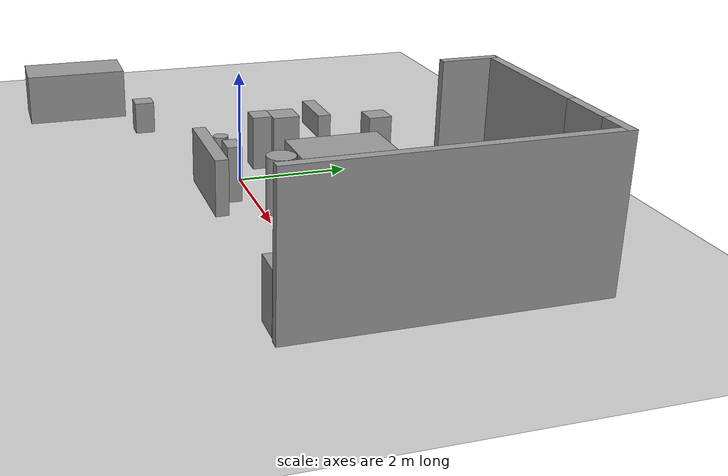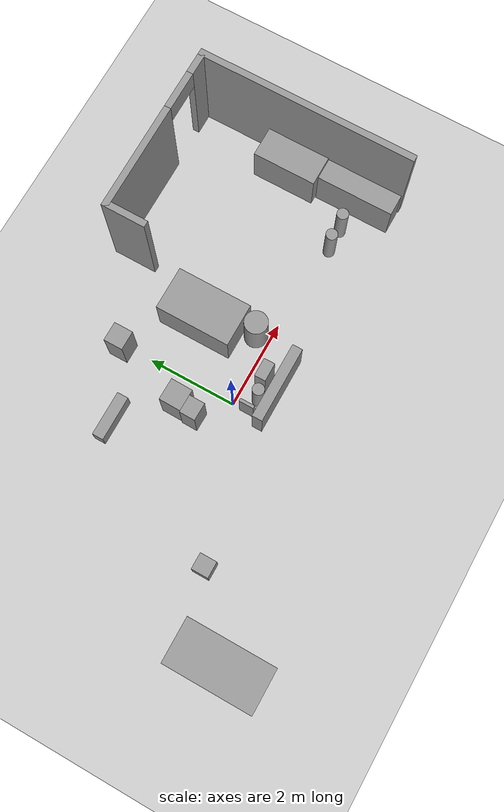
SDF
<sdf version="1.9">
 <world name="default">
  <model name="ground_plane">
   <static>true</static>
   <link name="link">
    <collision name="collision">
     <geometry><plane><normal>0 0 1</normal><size>100 100</size></plane></geometry>
     <surface><friction><ode><mu>100</mu><mu2>50</mu2></ode></friction></surface>
    </collision>
    <visual name="visual">
     <cast_shadows>false</cast_shadows>
     <geometry><plane><normal>0 0 1</normal><size>100 100</size></plane></geometry>
     <material>
      <script><uri>file://media/materials/scripts/gazebo.material</uri><name>Gazebo/Grey</name></script>
     </material>
    </visual>
   </link>
  </model>
  <model name="cma_L5">
   <pose>3.77502 1.45512 0 0 0 0</pose>
   <link name="Wall_0">
    <collision name="Wall_0_Collision">
     <geometry><box><size>1 0.14999999999999999 2.5</size></box></geometry>
     <pose>0 0 1.25 0 0 0</pose>
    </collision>
    <visual name="Wall_0_Visual">
     <pose>0 0 1.25 0 0 0</pose>
     <geometry><box><size>1 0.14999999999999999 2.5</size></box></geometry>
     <material>
      <script><uri>file://media/materials/scripts/gazebo.material</uri><name>Gazebo/Grey</name></script>
      <ambient>1 1 1 1</ambient>
     </material>
    </visual>
    <pose>-1.925 2 0 0 0 1.5708</pose>
   </link>
   <link name="Wall_1">
    <pose>0 2.4249999999999998 0 0 0 0</pose>
    <visual name="Wall_1_Visual_0">
     <pose>-0.75249999999999995 0 1.25 0 0 0</pose>
     <geometry><box><size>2.4950000000000001 0.14999999999999999 2.5</size></box></geometry>
     <material>
      <script><uri>file://media/materials/scripts/gazebo.material</uri><name>Gazebo/Grey</name></script>
      <ambient>1 1 1 1</ambient>
     </material>
    </visual>
    <collision name="Wall_1_Collision_0">
     <geometry><box><size>2.4950000000000001 0.14999999999999999 2.5</size></box></geometry>
     <pose>-0.75249999999999995 0 1.25 0 0 0</pose>
    </collision>
    <visual name="Wall_1_Visual_1">
     <pose>1.6975 0 1.25 0 0 0</pose>
     <geometry><box><size>0.60499999999999998 0.14999999999999999 2.5</size></box></geometry>
     <material>
      <script><uri>file://media/materials/scripts/gazebo.material</uri><name>Gazebo/Grey</name></script>
      <ambient>1 1 1 1</ambient>
     </material>
    </visual>
    <collision name="Wall_1_Collision_1">
     <geometry><box><size>0.60499999999999998 0.14999999999999999 2.5</size></box></geometry>
     <pose>1.6975 0 1.25 0 0 0</pose>
    </collision>
    <visual name="Wall_1_Visual_2">
     <pose>0.94499999999999995 0 2.25 0 0 0</pose>
     <geometry><box><size>0.90000000000000002 0.14999999999999999 0.5</size></box></geometry>
     <material>
      <script><uri>file://media/materials/scripts/gazebo.material</uri><name>Gazebo/Grey</name></script>
      <ambient>1 1 1 1</ambient>
     </material>
    </visual>
    <collision name="Wall_1_Collision_2">
     <geometry><box><size>0.90000000000000002 0.14999999999999999 0.5</size></box></geometry>
     <pose>0.94499999999999995 0 2.25 0 0 0</pose>
    </collision>
   </link>
   <link name="Wall_3">
    <collision name="Wall_3_Collision">
     <geometry><box><size>5 0.14999999999999999 2.5</size></box></geometry>
     <pose>0 0 1.25 0 0 0</pose>
    </collision>
    <visual name="Wall_3_Visual">
     <pose>0 0 1.25 0 0 0</pose>
     <geometry><box><size>5 0.14999999999999999 2.5</size></box></geometry>
     <material>
      <script><uri>file://media/materials/scripts/gazebo.material</uri><name>Gazebo/Grey</name></script>
      <ambient>1 1 1 1</ambient>
     </material>
    </visual>
    <pose>1.925 0 0 0 0 -1.5708</pose>
   </link>
   <static>true</static>
  </model>
  <model name="cma_armario">
   <link name="link_0">
    <pose>1.3215699999999999 0.88517800000000002 0.5 0 0 0</pose>
    <inertial>
     <mass>0.40237600000000001</mass>
     <inertia>
      <ixx>0.0353686</ixx>
      <ixy>0</ixy>
      <ixz>0</ixz>
      <iyy>0.13261600000000001</iyy>
      <iyz>0</iyz>
      <izz>0.100922</izz>
     </inertia>
    </inertial>
    <visual name="visual">
     <geometry><box><size>1.7187699999999999 0.234069 1</size></box></geometry>
     <material>
      <lighting>true</lighting>
      <script><uri>file://media/materials/scripts/gazebo.material</uri><name>Gazebo/Grey</name></script>
      <ambient>0.300000012 0.300000012 0.300000012 1</ambient>
      <diffuse>0.699999988 0.699999988 0.699999988 1</diffuse>
      <specular>0.00999999978 0.00999999978 0.00999999978 1</specular>
      <emissive>0 0 0 1</emissive>
     </material>
    </visual>
    <collision name="collision">
     <geometry><box><size>1.7187699999999999 0.234069 1</size></box></geometry>
     <surface>
      <friction>
       <ode><mu>1</mu><mu2>1</mu2><fdir1>0 0 0</fdir1><slip1>0</slip1><slip2>0</slip2></ode>
       <torsional>
        <coefficient>1</coefficient>
        <patch_radius>0</patch_radius>
        <surface_radius>0</surface_radius>
        <use_patch_radius>true</use_patch_radius>
        <ode><slip>0</slip></ode>
       </torsional>
      </friction>
      <bounce><restitution_coefficient>0</restitution_coefficient><threshold>1000000</threshold></bounce>
      <contact>
       <collide_without_contact>false</collide_without_contact>
       <collide_without_contact_bitmask>1</collide_without_contact_bitmask>
       <collide_bitmask>1</collide_bitmask>
       <ode>
        <soft_cfm>0</soft_cfm>
        <soft_erp>0.20000000000000001</soft_erp>
        <kp>10000000000000</kp>
        <kd>1</kd>
        <max_vel>0.01</max_vel>
        <min_depth>0</min_depth>
       </ode>
       <bullet>
        <split_impulse>true</split_impulse>
        <split_impulse_penetration_threshold>-0.01</split_impulse_penetration_threshold>
        <soft_cfm>0</soft_cfm>
        <soft_erp>0.20000000000000001</soft_erp>
        <kp>10000000000000</kp>
        <kd>1</kd>
       </bullet>
      </contact>
     </surface>
    </collision>
   </link>
   <static>false</static>
   <pose>-0.66933500000000001 -1.5827199999999999 0 0 0 0.0012960000000000001</pose>
  </model>
  <model name="cma_picador_0">
   <link name="link_2">
    <pose>-0.7258 -1.6910400000000001 0 0 0 0</pose>
    <inertial>
     <mass>0.10473200000000001</mass>
     <inertia>
      <ixx>0.0092790600000000004</ixx>
      <ixy>0</ixy>
      <ixz>0</ixz>
      <iyy>0.010243</iyy>
      <iyz>0</iyz>
      <izz>0.0020667200000000002</izz>
     </inertia>
    </inertial>
    <visual name="visual">
     <geometry><box><size>0.416688 0.25134000000000001 1</size></box></geometry>
     <material>
      <lighting>true</lighting>
      <script><uri>file://media/materials/scripts/gazebo.material</uri><name>Gazebo/Grey</name></script>
      <ambient>0.300000012 0.300000012 0.300000012 1</ambient>
      <diffuse>0.699999988 0.699999988 0.699999988 1</diffuse>
      <specular>0.00999999978 0.00999999978 0.00999999978 1</specular>
      <emissive>0 0 0 1</emissive>
     </material>
    </visual>
    <collision name="collision">
     <geometry><box><size>0.416688 0.25134000000000001 1</size></box></geometry>
     <surface>
      <friction>
       <ode><mu>1</mu><mu2>1</mu2><fdir1>0 0 0</fdir1><slip1>0</slip1><slip2>0</slip2></ode>
       <torsional>
        <coefficient>1</coefficient>
        <patch_radius>0</patch_radius>
        <surface_radius>0</surface_radius>
        <use_patch_radius>true</use_patch_radius>
        <ode><slip>0</slip></ode>
       </torsional>
      </friction>
      <bounce><restitution_coefficient>0</restitution_coefficient><threshold>1000000</threshold></bounce>
      <contact>
       <collide_without_contact>false</collide_without_contact>
       <collide_without_contact_bitmask>1</collide_without_contact_bitmask>
       <collide_bitmask>1</collide_bitmask>
       <ode>
        <soft_cfm>0</soft_cfm>
        <soft_erp>0.20000000000000001</soft_erp>
        <kp>10000000000000</kp>
        <kd>1</kd>
        <max_vel>0.01</max_vel>
        <min_depth>0</min_depth>
       </ode>
       <bullet>
        <split_impulse>true</split_impulse>
        <split_impulse_penetration_threshold>-0.01</split_impulse_penetration_threshold>
        <soft_cfm>0</soft_cfm>
        <soft_erp>0.20000000000000001</soft_erp>
        <kp>10000000000000</kp>
        <kd>1</kd>
       </bullet>
      </contact>
     </surface>
    </collision>
   </link>
   <static>false</static>
   <pose>1.47237 1.3597600000000001 0.50000199999999995 9.9999999999999995e-07 2.0000000000000003e-06 0.0087860000000000004</pose>
  </model>
  <model name="cma_lixo">
   <link name="link_1">
    <pose>0.88296200000000002 1.81586 0.5 0 0 0</pose>
    <inertial>
     <mass>0.068764400000000003</mass>
     <inertia>
      <ixx>0.00602588</ixx>
      <ixy>0</ixy>
      <ixz>0</ixz>
      <iyy>0.00602588</iyy>
      <iyz>0</iyz>
      <izz>0.00059106800000000004</izz>
     </inertia>
    </inertial>
    <visual name="visual">
     <geometry><cylinder><radius>0.13111200000000001</radius><length>1</length></cylinder></geometry>
     <material>
      <lighting>true</lighting>
      <script><uri>file://media/materials/scripts/gazebo.material</uri><name>Gazebo/Grey</name></script>
      <ambient>0.300000012 0.300000012 0.300000012 1</ambient>
      <diffuse>0.699999988 0.699999988 0.699999988 1</diffuse>
      <specular>0.00999999978 0.00999999978 0.00999999978 1</specular>
      <emissive>0 0 0 1</emissive>
     </material>
    </visual>
    <collision name="collision">
     <geometry><cylinder><radius>0.13111200000000001</radius><length>1</length></cylinder></geometry>
     <surface>
      <friction>
       <ode><mu>1</mu><mu2>1</mu2><fdir1>0 0 0</fdir1><slip1>0</slip1><slip2>0</slip2></ode>
       <torsional>
        <coefficient>1</coefficient>
        <patch_radius>0</patch_radius>
        <surface_radius>0</surface_radius>
        <use_patch_radius>true</use_patch_radius>
        <ode><slip>0</slip></ode>
       </torsional>
      </friction>
      <bounce><restitution_coefficient>0</restitution_coefficient><threshold>1000000</threshold></bounce>
      <contact>
       <collide_without_contact>false</collide_without_contact>
       <collide_without_contact_bitmask>1</collide_without_contact_bitmask>
       <collide_bitmask>1</collide_bitmask>
       <ode>
        <soft_cfm>0</soft_cfm>
        <soft_erp>0.20000000000000001</soft_erp>
        <kp>10000000000000</kp>
        <kd>1</kd>
        <max_vel>0.01</max_vel>
        <min_depth>0</min_depth>
       </ode>
       <bullet>
        <split_impulse>true</split_impulse>
        <split_impulse_penetration_threshold>-0.01</split_impulse_penetration_threshold>
        <soft_cfm>0</soft_cfm>
        <soft_erp>0.20000000000000001</soft_erp>
        <kp>10000000000000</kp>
        <kd>1</kd>
       </bullet>
      </contact>
     </surface>
    </collision>
   </link>
   <static>false</static>
   <pose>-1.35785 -1.5254399999999999 -5.0000000000000004e-06 0 0 -0.54309700000000016</pose>
  </model>
  <model name="cma_cesto">
   <link name="link_1">
    <pose>-0.32965899999999998 -1.55494 0 0 0 0</pose>
    <inertial>
     <mass>0.267897</mass>
     <inertia>
      <ixx>0.026810199999999999</ixx>
      <ixy>0</ixy>
      <ixz>0</ixz>
      <iyy>0.026810199999999999</iyy>
      <iyz>0</iyz>
      <izz>0.0089711099999999992</izz>
     </inertia>
    </inertial>
    <visual name="visual">
     <geometry><cylinder><radius>0.25879200000000002</radius><length>1</length></cylinder></geometry>
     <material>
      <lighting>true</lighting>
      <script><uri>file://media/materials/scripts/gazebo.material</uri><name>Gazebo/Grey</name></script>
      <ambient>0.300000012 0.300000012 0.300000012 1</ambient>
      <diffuse>0.699999988 0.699999988 0.699999988 1</diffuse>
      <specular>0.00999999978 0.00999999978 0.00999999978 1</specular>
      <emissive>0 0 0 1</emissive>
     </material>
    </visual>
    <collision name="collision">
     <geometry><cylinder><radius>0.25879200000000002</radius><length>1</length></cylinder></geometry>
     <surface>
      <friction>
       <ode><mu>1</mu><mu2>1</mu2><fdir1>0 0 0</fdir1><slip1>0</slip1><slip2>0</slip2></ode>
       <torsional>
        <coefficient>1</coefficient>
        <patch_radius>0</patch_radius>
        <surface_radius>0</surface_radius>
        <use_patch_radius>true</use_patch_radius>
        <ode><slip>0</slip></ode>
       </torsional>
      </friction>
      <bounce><restitution_coefficient>0</restitution_coefficient><threshold>1000000</threshold></bounce>
      <contact>
       <collide_without_contact>false</collide_without_contact>
       <collide_without_contact_bitmask>1</collide_without_contact_bitmask>
       <collide_bitmask>1</collide_bitmask>
       <ode>
        <soft_cfm>0</soft_cfm>
        <soft_erp>0.20000000000000001</soft_erp>
        <kp>10000000000000</kp>
        <kd>1</kd>
        <max_vel>0.01</max_vel>
        <min_depth>0</min_depth>
       </ode>
       <bullet>
        <split_impulse>true</split_impulse>
        <split_impulse_penetration_threshold>-0.01</split_impulse_penetration_threshold>
        <soft_cfm>0</soft_cfm>
        <soft_erp>0.20000000000000001</soft_erp>
        <kp>10000000000000</kp>
        <kd>1</kd>
       </bullet>
      </contact>
     </surface>
    </collision>
   </link>
   <static>false</static>
   <pose>1.9109799999999999 1.85863 0.49999199999999999 0 0 -0.013204999999999998</pose>
  </model>
  <model name="cma_sofa_2_lugares">
   <link name="link_0">
    <pose>-0.034013000000000002 -0.039828000000000002 0 0 0 0</pose>
    <inertial>
     <mass>1.6607099999999999</mass>
     <inertia>
      <ixx>0.53818299999999997</ixx>
      <ixy>0</ixy>
      <ixz>0</ixz>
      <iyy>0.27051900000000001</iyy>
      <iyz>0</iyz>
      <izz>0.53191500000000003</izz>
     </inertia>
    </inertial>
    <visual name="visual">
     <geometry><box><size>0.97714699999999999 1.6996800000000001 1</size></box></geometry>
     <material>
      <lighting>true</lighting>
      <script><uri>file://media/materials/scripts/gazebo.material</uri><name>Gazebo/Grey</name></script>
      <ambient>0.300000012 0.300000012 0.300000012 1</ambient>
      <diffuse>0.699999988 0.699999988 0.699999988 1</diffuse>
      <specular>0.00999999978 0.00999999978 0.00999999978 1</specular>
      <emissive>0 0 0 1</emissive>
     </material>
    </visual>
    <collision name="collision">
     <geometry><box><size>0.97714699999999999 1.6996800000000001 1</size></box></geometry>
     <surface>
      <friction>
       <ode><mu>1</mu><mu2>1</mu2><fdir1>0 0 0</fdir1><slip1>0</slip1><slip2>0</slip2></ode>
       <torsional>
        <coefficient>1</coefficient>
        <patch_radius>0</patch_radius>
        <surface_radius>0</surface_radius>
        <use_patch_radius>true</use_patch_radius>
        <ode><slip>0</slip></ode>
       </torsional>
      </friction>
      <bounce><restitution_coefficient>0</restitution_coefficient><threshold>1000000</threshold></bounce>
      <contact>
       <collide_without_contact>false</collide_without_contact>
       <collide_without_contact_bitmask>1</collide_without_contact_bitmask>
       <collide_bitmask>1</collide_bitmask>
       <ode>
        <soft_cfm>0</soft_cfm>
        <soft_erp>0.20000000000000001</soft_erp>
        <kp>10000000000000</kp>
        <kd>1</kd>
        <max_vel>0.01</max_vel>
        <min_depth>0</min_depth>
       </ode>
       <bullet>
        <split_impulse>true</split_impulse>
        <split_impulse_penetration_threshold>-0.01</split_impulse_penetration_threshold>
        <soft_cfm>0</soft_cfm>
        <soft_erp>0.20000000000000001</soft_erp>
        <kp>10000000000000</kp>
        <kd>1</kd>
       </bullet>
      </contact>
     </surface>
    </collision>
   </link>
   <static>false</static>
   <pose>1.3647899999999999 1.4730399999999999 0.49999900000000003 -2.5849394142333812e-26 -2.0000000000000003e-06 0.00019799999999999996</pose>
  </model>
  <model name="cma_gaveteiro_pequeno_0">
   <link name="link_0">
    <pose>0.25617400000000001 1.2505500000000001 0.5 0 0 0</pose>
    <inertial>
     <mass>0.18718599999999999</mass>
     <inertia>
      <ixx>0.018509999999999999</ixx>
      <ixy>0</ixy>
      <ixz>0</ixz>
      <iyy>0.018527600000000002</iyy>
      <iyz>0</iyz>
      <izz>0.00583981</izz>
     </inertia>
    </inertial>
    <visual name="visual">
     <geometry><box><size>0.43331700000000001 0.432002 1</size></box></geometry>
     <material>
      <lighting>true</lighting>
      <script><uri>file://media/materials/scripts/gazebo.material</uri><name>Gazebo/Grey</name></script>
      <ambient>0.300000012 0.300000012 0.300000012 1</ambient>
      <diffuse>0.699999988 0.699999988 0.699999988 1</diffuse>
      <specular>0.00999999978 0.00999999978 0.00999999978 1</specular>
      <emissive>0 0 0 1</emissive>
     </material>
    </visual>
    <collision name="collision">
     <geometry><box><size>0.43331700000000001 0.432002 1</size></box></geometry>
     <surface>
      <friction>
       <ode><mu>1</mu><mu2>1</mu2><fdir1>0 0 0</fdir1><slip1>0</slip1><slip2>0</slip2></ode>
       <torsional>
        <coefficient>1</coefficient>
        <patch_radius>0</patch_radius>
        <surface_radius>0</surface_radius>
        <use_patch_radius>true</use_patch_radius>
        <ode><slip>0</slip></ode>
       </torsional>
      </friction>
      <bounce><restitution_coefficient>0</restitution_coefficient><threshold>1000000</threshold></bounce>
      <contact>
       <collide_without_contact>false</collide_without_contact>
       <collide_without_contact_bitmask>1</collide_without_contact_bitmask>
       <collide_bitmask>1</collide_bitmask>
       <ode>
        <soft_cfm>0</soft_cfm>
        <soft_erp>0.20000000000000001</soft_erp>
        <kp>10000000000000</kp>
        <kd>1</kd>
        <max_vel>0.01</max_vel>
        <min_depth>0</min_depth>
       </ode>
       <bullet>
        <split_impulse>true</split_impulse>
        <split_impulse_penetration_threshold>-0.01</split_impulse_penetration_threshold>
        <soft_cfm>0</soft_cfm>
        <soft_erp>0.20000000000000001</soft_erp>
        <kp>10000000000000</kp>
        <kd>1</kd>
       </bullet>
      </contact>
     </surface>
    </collision>
   </link>
   <static>false</static>
   <pose>-0.33604600000000001 1.3951199999999999 0 0 0 -5.9000000000000004e-05</pose>
  </model>
  <model name="cma_gaveteiro_0">
   <link name="link_0">
    <pose>0 3.9999999999999998e-06 0 0 0 0</pose>
    <inertial>
     <mass>0.245086</mass>
     <inertia>
      <ixx>0.025418</ixx>
      <ixy>0</ixy>
      <ixz>0</ixz>
      <iyy>0.025441100000000001</iyy>
      <iyz>0</iyz>
      <izz>0.010011300000000001</izz>
     </inertia>
    </inertial>
    <visual name="visual">
     <geometry><box><size>0.49565700000000001 0.49449100000000001 1</size></box></geometry>
     <material>
      <lighting>true</lighting>
      <script><uri>file://media/materials/scripts/gazebo.material</uri><name>Gazebo/Grey</name></script>
      <ambient>0.300000012 0.300000012 0.300000012 1</ambient>
      <diffuse>0.699999988 0.699999988 0.699999988 1</diffuse>
      <specular>0.00999999978 0.00999999978 0.00999999978 1</specular>
      <emissive>0 0 0 1</emissive>
     </material>
    </visual>
    <collision name="collision">
     <geometry><box><size>0.49565700000000001 0.49449100000000001 1</size></box></geometry>
     <surface>
      <friction>
       <ode><mu>1</mu><mu2>1</mu2><fdir1>0 0 0</fdir1><slip1>0</slip1><slip2>0</slip2></ode>
       <torsional>
        <coefficient>1</coefficient>
        <patch_radius>0</patch_radius>
        <surface_radius>0</surface_radius>
        <use_patch_radius>true</use_patch_radius>
        <ode><slip>0</slip></ode>
       </torsional>
      </friction>
      <bounce><restitution_coefficient>0</restitution_coefficient><threshold>1000000</threshold></bounce>
      <contact>
       <collide_without_contact>false</collide_without_contact>
       <collide_without_contact_bitmask>1</collide_without_contact_bitmask>
       <collide_bitmask>1</collide_bitmask>
       <ode>
        <soft_cfm>0</soft_cfm>
        <soft_erp>0.20000000000000001</soft_erp>
        <kp>10000000000000</kp>
        <kd>1</kd>
        <max_vel>0.01</max_vel>
        <min_depth>0</min_depth>
       </ode>
       <bullet>
        <split_impulse>true</split_impulse>
        <split_impulse_penetration_threshold>-0.01</split_impulse_penetration_threshold>
        <soft_cfm>0</soft_cfm>
        <soft_erp>0.20000000000000001</soft_erp>
        <kp>10000000000000</kp>
        <kd>1</kd>
       </bullet>
      </contact>
     </surface>
    </collision>
   </link>
   <static>false</static>
   <pose>-0.57789199999999996 0.98409100000000005 0.49999900000000003 -2.0000000000000003e-06 0 -0.014211</pose>
  </model>
  <model name="cma_sofa2">
   <link name="link_0">
    <pose>-4.6680000000000001 -2.0060099999999998 0.5 0 0 0</pose>
    <inertial>
     <mass>1.9868300000000001</mass>
     <inertia>
      <ixx>0.81914900000000002</ixx>
      <ixy>0</ixy>
      <ixz>0</ixz>
      <iyy>0.33113799999999999</iyy>
      <iyz>0</iyz>
      <izz>0.81914900000000002</izz>
     </inertia>
    </inertial>
    <visual name="visual">
     <geometry><box><size>1 1.98682 1</size></box></geometry>
     <material>
      <lighting>true</lighting>
      <script><uri>file://media/materials/scripts/gazebo.material</uri><name>Gazebo/Grey</name></script>
      <ambient>0.300000012 0.300000012 0.300000012 1</ambient>
      <diffuse>0.699999988 0.699999988 0.699999988 1</diffuse>
      <specular>0.00999999978 0.00999999978 0.00999999978 1</specular>
      <emissive>0 0 0 1</emissive>
     </material>
    </visual>
    <collision name="collision">
     <geometry><box><size>1 1.98682 1</size></box></geometry>
     <surface>
      <friction>
       <ode><mu>1</mu><mu2>1</mu2><fdir1>0 0 0</fdir1><slip1>0</slip1><slip2>0</slip2></ode>
       <torsional>
        <coefficient>1</coefficient>
        <patch_radius>0</patch_radius>
        <surface_radius>0</surface_radius>
        <use_patch_radius>true</use_patch_radius>
        <ode><slip>0</slip></ode>
       </torsional>
      </friction>
      <bounce><restitution_coefficient>0</restitution_coefficient><threshold>1000000</threshold></bounce>
      <contact>
       <collide_without_contact>false</collide_without_contact>
       <collide_without_contact_bitmask>1</collide_without_contact_bitmask>
       <collide_bitmask>1</collide_bitmask>
       <ode>
        <soft_cfm>0</soft_cfm>
        <soft_erp>0.20000000000000001</soft_erp>
        <kp>10000000000000</kp>
        <kd>1</kd>
        <max_vel>0.01</max_vel>
        <min_depth>0</min_depth>
       </ode>
       <bullet>
        <split_impulse>true</split_impulse>
        <split_impulse_penetration_threshold>-0.01</split_impulse_penetration_threshold>
        <soft_cfm>0</soft_cfm>
        <soft_erp>0.20000000000000001</soft_erp>
        <kp>10000000000000</kp>
        <kd>1</kd>
       </bullet>
      </contact>
     </surface>
    </collision>
   </link>
   <static>false</static>
   <pose>-0.095329999999999998 -0.40783399999999997 -1.4e-05 -2.0194839173748778e-28 3.0000000000000001e-06 9.9999999999999995e-07</pose>
  </model>
  <model name="cma_apoio_s">
   <link name="link_1">
    <pose>-1.9376 -3.4655100000000001 0.5 0 0 0</pose>
    <inertial>
     <mass>0.087846300000000002</mass>
     <inertia>
      <ixx>0.0039269600000000002</ixx>
      <ixy>0</ixy>
      <ixz>0</ixz>
      <iyy>0.0038535599999999998</iyy>
      <iyz>0</iyz>
      <izz>0.0020587000000000001</izz>
     </inertia>
    </inertial>
    <visual name="visual">
     <geometry><box><size>0.36822300000000002 0.38159199999999999 0.62511799999999995</size></box></geometry>
     <material>
      <lighting>true</lighting>
      <script><uri>file://media/materials/scripts/gazebo.material</uri><name>Gazebo/Grey</name></script>
      <ambient>0.300000012 0.300000012 0.300000012 1</ambient>
      <diffuse>0.699999988 0.699999988 0.699999988 1</diffuse>
      <specular>0.00999999978 0.00999999978 0.00999999978 1</specular>
      <emissive>0 0 0 1</emissive>
     </material>
    </visual>
    <collision name="collision">
     <geometry><box><size>0.36822300000000002 0.38159199999999999 0.62511799999999995</size></box></geometry>
     <surface>
      <friction>
       <ode><mu>1</mu><mu2>1</mu2><fdir1>0 0 0</fdir1><slip1>0</slip1><slip2>0</slip2></ode>
       <torsional>
        <coefficient>1</coefficient>
        <patch_radius>0</patch_radius>
        <surface_radius>0</surface_radius>
        <use_patch_radius>true</use_patch_radius>
        <ode><slip>0</slip></ode>
       </torsional>
      </friction>
      <bounce><restitution_coefficient>0</restitution_coefficient><threshold>1000000</threshold></bounce>
      <contact>
       <collide_without_contact>false</collide_without_contact>
       <collide_without_contact_bitmask>1</collide_without_contact_bitmask>
       <collide_bitmask>1</collide_bitmask>
       <ode>
        <soft_cfm>0</soft_cfm>
        <soft_erp>0.20000000000000001</soft_erp>
        <kp>10000000000000</kp>
        <kd>1</kd>
        <max_vel>0.01</max_vel>
        <min_depth>0</min_depth>
       </ode>
       <bullet>
        <split_impulse>true</split_impulse>
        <split_impulse_penetration_threshold>-0.01</split_impulse_penetration_threshold>
        <soft_cfm>0</soft_cfm>
        <soft_erp>0.20000000000000001</soft_erp>
        <kp>10000000000000</kp>
        <kd>1</kd>
       </bullet>
      </contact>
     </surface>
    </collision>
   </link>
   <static>false</static>
   <pose>-1.30905 2.2709800000000002 -0.187446 -1.0000000000000004e-06 1.0000000000000002e-06 -0.00083199999999999984</pose>
  </model>
  <model name="cma_gaveteiro_pequeno_e">
   <link name="link_1">
    <pose>9.9999999999999995e-07 -3.0000000000000001e-06 0 0 0 0</pose>
    <inertial>
     <mass>0.14553199999999999</mass>
     <inertia>
      <ixx>0.0136813</ixx>
      <ixy>0</ixy>
      <ixz>0</ixz>
      <iyy>0.0141327</iyy>
      <iyz>0</iyz>
      <izz>0.0035586599999999999</izz>
     </inertia>
    </inertial>
    <visual name="visual">
     <geometry><box><size>0.40660000000000002 0.35791800000000001 1</size></box></geometry>
     <material>
      <lighting>true</lighting>
      <script><uri>file://media/materials/scripts/gazebo.material</uri><name>Gazebo/Grey</name></script>
      <ambient>0.300000012 0.300000012 0.300000012 1</ambient>
      <diffuse>0.699999988 0.699999988 0.699999988 1</diffuse>
      <specular>0.00999999978 0.00999999978 0.00999999978 1</specular>
      <emissive>0 0 0 1</emissive>
     </material>
    </visual>
    <collision name="collision">
     <geometry><box><size>0.40660000000000002 0.35791800000000001 1</size></box></geometry>
     <surface>
      <friction>
       <ode><mu>1</mu><mu2>1</mu2><fdir1>0 0 0</fdir1><slip1>0</slip1><slip2>0</slip2></ode>
       <torsional>
        <coefficient>1</coefficient>
        <patch_radius>0</patch_radius>
        <surface_radius>0</surface_radius>
        <use_patch_radius>true</use_patch_radius>
        <ode><slip>0</slip></ode>
       </torsional>
      </friction>
      <bounce><restitution_coefficient>0</restitution_coefficient><threshold>1000000</threshold></bounce>
      <contact>
       <collide_without_contact>false</collide_without_contact>
       <collide_without_contact_bitmask>1</collide_without_contact_bitmask>
       <collide_bitmask>1</collide_bitmask>
       <ode>
        <soft_cfm>0</soft_cfm>
        <soft_erp>0.20000000000000001</soft_erp>
        <kp>10000000000000</kp>
        <kd>1</kd>
        <max_vel>0.01</max_vel>
        <min_depth>0</min_depth>
       </ode>
       <bullet>
        <split_impulse>true</split_impulse>
        <split_impulse_penetration_threshold>-0.01</split_impulse_penetration_threshold>
        <soft_cfm>0</soft_cfm>
        <soft_erp>0.20000000000000001</soft_erp>
        <kp>10000000000000</kp>
        <kd>1</kd>
       </bullet>
      </contact>
     </surface>
    </collision>
   </link>
   <static>false</static>
   <pose>-0.652945 0.55891599999999997 0.50000100000000003 0 5.0000000000000013e-06 -0.014212000000000001</pose>
  </model>
  <model name="cma_pe_mesa2">
   <link name="link_0">
    <pose>-9.9999999999999995e-07 0 0 0 0 0</pose>
    <inertial>
     <mass>0.0184993</mass>
     <inertia>
      <ixx>0.0011378499999999999</ixx>
      <ixy>0</ixy>
      <ixz>0</ixz>
      <iyy>0.00097356799999999996</iyy>
      <iyz>0</iyz>
      <izz>0.000179385</izz>
     </inertia>
    </inertial>
    <visual name="visual">
     <geometry><box><size>0.070004999999999998 0.33385999999999999 0.79159199999999996</size></box></geometry>
     <material>
      <lighting>true</lighting>
      <script><uri>file://media/materials/scripts/gazebo.material</uri><name>Gazebo/Grey</name></script>
      <ambient>0.300000012 0.300000012 0.300000012 1</ambient>
      <diffuse>0.699999988 0.699999988 0.699999988 1</diffuse>
      <specular>0.00999999978 0.00999999978 0.00999999978 1</specular>
      <emissive>0 0 0 1</emissive>
     </material>
    </visual>
    <collision name="collision">
     <geometry><box><size>0.070004999999999998 0.33385999999999999 0.79159199999999996</size></box></geometry>
     <surface>
      <friction>
       <ode><mu>1</mu><mu2>1</mu2><fdir1>0 0 0</fdir1><slip1>0</slip1><slip2>0</slip2></ode>
       <torsional>
        <coefficient>1</coefficient>
        <patch_radius>0</patch_radius>
        <surface_radius>0</surface_radius>
        <use_patch_radius>true</use_patch_radius>
        <ode><slip>0</slip></ode>
       </torsional>
      </friction>
      <bounce><restitution_coefficient>0</restitution_coefficient><threshold>1000000</threshold></bounce>
      <contact>
       <collide_without_contact>false</collide_without_contact>
       <collide_without_contact_bitmask>1</collide_without_contact_bitmask>
       <collide_bitmask>1</collide_bitmask>
       <ode>
        <soft_cfm>0</soft_cfm>
        <soft_erp>0.20000000000000001</soft_erp>
        <kp>10000000000000</kp>
        <kd>1</kd>
        <max_vel>0.01</max_vel>
        <min_depth>0</min_depth>
       </ode>
       <bullet>
        <split_impulse>true</split_impulse>
        <split_impulse_penetration_threshold>-0.01</split_impulse_penetration_threshold>
        <soft_cfm>0</soft_cfm>
        <soft_erp>0.20000000000000001</soft_erp>
        <kp>10000000000000</kp>
        <kd>1</kd>
       </bullet>
      </contact>
     </surface>
    </collision>
   </link>
   <static>false</static>
   <pose>0.0086350000000000003 -0.34209099999999998 0.39579599999999998 0 -2.0000000000000008e-06 0.00029700000000000001</pose>
  </model>
  <model name="cma_geladeira">
   <link name="link_2">
    <pose>3.0000000000000001e-06 -3.9999999999999998e-06 0 0 0 0</pose>
    <inertial>
     <mass>0.994085</mass>
     <inertia>
      <ixx>0.258405</ixx>
      <ixy>0</ixy>
      <ixz>0</ixz>
      <iyy>0.12146800000000001</iyy>
      <iyz>0</iyz>
      <izz>0.21419199999999999</izz>
     </inertia>
    </inertial>
    <visual name="visual">
     <geometry><box><size>0.68284400000000001 1.4557899999999999 1</size></box></geometry>
     <material>
      <lighting>true</lighting>
      <script><uri>file://media/materials/scripts/gazebo.material</uri><name>Gazebo/Grey</name></script>
      <ambient>0.300000012 0.300000012 0.300000012 1</ambient>
      <diffuse>0.699999988 0.699999988 0.699999988 1</diffuse>
      <specular>0.00999999978 0.00999999978 0.00999999978 1</specular>
      <emissive>0 0 0 1</emissive>
     </material>
    </visual>
    <collision name="collision">
     <geometry><box><size>0.68284400000000001 1.4557899999999999 1</size></box></geometry>
     <surface>
      <friction>
       <ode><mu>1</mu><mu2>1</mu2><fdir1>0 0 0</fdir1><slip1>0</slip1><slip2>0</slip2></ode>
       <torsional>
        <coefficient>1</coefficient>
        <patch_radius>0</patch_radius>
        <surface_radius>0</surface_radius>
        <use_patch_radius>true</use_patch_radius>
        <ode><slip>0</slip></ode>
       </torsional>
      </friction>
      <bounce><restitution_coefficient>0</restitution_coefficient><threshold>1000000</threshold></bounce>
      <contact>
       <collide_without_contact>false</collide_without_contact>
       <collide_without_contact_bitmask>1</collide_without_contact_bitmask>
       <collide_bitmask>1</collide_bitmask>
       <ode>
        <soft_cfm>0</soft_cfm>
        <soft_erp>0.20000000000000001</soft_erp>
        <kp>10000000000000</kp>
        <kd>1</kd>
        <max_vel>0.01</max_vel>
        <min_depth>0</min_depth>
       </ode>
       <bullet>
        <split_impulse>true</split_impulse>
        <split_impulse_penetration_threshold>-0.01</split_impulse_penetration_threshold>
        <soft_cfm>0</soft_cfm>
        <soft_erp>0.20000000000000001</soft_erp>
        <kp>10000000000000</kp>
        <kd>1</kd>
       </bullet>
      </contact>
     </surface>
    </collision>
   </link>
   <static>false</static>
   <pose>5.2195799999999997 1.4771700000000001 0.5 0 0 0</pose>
  </model>
  <model name="cma_armario_coz_190x40cm">
   <link name="link_3">
    <pose>-3.0000000000000001e-06 9.9999999999999995e-07 0 0 0 0</pose>
    <inertial>
     <mass>0.84861799999999998</mass>
     <inertia>
      <ixx>0.28876000000000002</ixx>
      <ixy>0</ixy>
      <ixz>0</ixz>
      <iyy>0.087235900000000005</iyy>
      <iyz>0</iyz>
      <izz>0.23455899999999999</izz>
     </inertia>
    </inertial>
    <visual name="visual">
     <geometry><box><size>0.48330099999999998 1.7559199999999999 1</size></box></geometry>
     <material>
      <lighting>true</lighting>
      <script><uri>file://media/materials/scripts/gazebo.material</uri><name>Gazebo/Grey</name></script>
      <ambient>0.300000012 0.300000012 0.300000012 1</ambient>
      <diffuse>0.699999988 0.699999988 0.699999988 1</diffuse>
      <specular>0.00999999978 0.00999999978 0.00999999978 1</specular>
      <emissive>0 0 0 1</emissive>
     </material>
    </visual>
    <collision name="collision">
     <geometry><box><size>0.48330099999999998 1.7559199999999999 1</size></box></geometry>
     <surface>
      <friction>
       <ode><mu>1</mu><mu2>1</mu2><fdir1>0 0 0</fdir1><slip1>0</slip1><slip2>0</slip2></ode>
       <torsional>
        <coefficient>1</coefficient>
        <patch_radius>0</patch_radius>
        <surface_radius>0</surface_radius>
        <use_patch_radius>true</use_patch_radius>
        <ode><slip>0</slip></ode>
       </torsional>
      </friction>
      <bounce><restitution_coefficient>0</restitution_coefficient><threshold>1000000</threshold></bounce>
      <contact>
       <collide_without_contact>false</collide_without_contact>
       <collide_without_contact_bitmask>1</collide_without_contact_bitmask>
       <collide_bitmask>1</collide_bitmask>
       <ode>
        <soft_cfm>0</soft_cfm>
        <soft_erp>0.20000000000000001</soft_erp>
        <kp>10000000000000</kp>
        <kd>1</kd>
        <max_vel>0.01</max_vel>
        <min_depth>0</min_depth>
       </ode>
       <bullet>
        <split_impulse>true</split_impulse>
        <split_impulse_penetration_threshold>-0.01</split_impulse_penetration_threshold>
        <soft_cfm>0</soft_cfm>
        <soft_erp>0.20000000000000001</soft_erp>
        <kp>10000000000000</kp>
        <kd>1</kd>
       </bullet>
      </contact>
     </surface>
    </collision>
   </link>
   <static>false</static>
   <pose>5.29765 -0.14768500000000001 0.5 0 0 0</pose>
  </model>
  <model name="cma_lixo_4">
   <link name="link_1">
    <pose>0.88296200000000002 1.81586 0.5 0 0 0</pose>
    <inertial>
     <mass>0.068764400000000003</mass>
     <inertia>
      <ixx>0.00602588</ixx>
      <ixy>0</ixy>
      <ixz>0</ixz>
      <iyy>0.00602588</iyy>
      <iyz>0</iyz>
      <izz>0.00059106800000000004</izz>
     </inertia>
    </inertial>
    <visual name="visual">
     <geometry><cylinder><radius>0.13111200000000001</radius><length>1</length></cylinder></geometry>
     <material>
      <lighting>true</lighting>
      <script><uri>file://media/materials/scripts/gazebo.material</uri><name>Gazebo/Grey</name></script>
      <ambient>0.300000012 0.300000012 0.300000012 1</ambient>
      <diffuse>0.699999988 0.699999988 0.699999988 1</diffuse>
      <specular>0.00999999978 0.00999999978 0.00999999978 1</specular>
      <emissive>0 0 0 1</emissive>
     </material>
    </visual>
    <collision name="collision">
     <geometry><cylinder><radius>0.13111200000000001</radius><length>1</length></cylinder></geometry>
     <surface>
      <friction>
       <ode><mu>1</mu><mu2>1</mu2><fdir1>0 0 0</fdir1><slip1>0</slip1><slip2>0</slip2></ode>
       <torsional>
        <coefficient>1</coefficient>
        <patch_radius>0</patch_radius>
        <surface_radius>0</surface_radius>
        <use_patch_radius>true</use_patch_radius>
        <ode><slip>0</slip></ode>
       </torsional>
      </friction>
      <bounce><restitution_coefficient>0</restitution_coefficient><threshold>1000000</threshold></bounce>
      <contact>
       <collide_without_contact>false</collide_without_contact>
       <collide_without_contact_bitmask>1</collide_without_contact_bitmask>
       <collide_bitmask>1</collide_bitmask>
       <ode>
        <soft_cfm>0</soft_cfm>
        <soft_erp>0.20000000000000001</soft_erp>
        <kp>10000000000000</kp>
        <kd>1</kd>
        <max_vel>0.01</max_vel>
        <min_depth>0</min_depth>
       </ode>
       <bullet>
        <split_impulse>true</split_impulse>
        <split_impulse_penetration_threshold>-0.01</split_impulse_penetration_threshold>
        <soft_cfm>0</soft_cfm>
        <soft_erp>0.20000000000000001</soft_erp>
        <kp>10000000000000</kp>
        <kd>1</kd>
       </bullet>
      </contact>
     </surface>
    </collision>
   </link>
   <static>false</static>
   <pose>3.1650999999999998 -1.9552 0 0 0 0</pose>
  </model>
  <model name="cma_lixo_5">
   <link name="link_1">
    <pose>0.88296200000000002 1.81586 0.5 0 0 0</pose>
    <inertial>
     <mass>0.068764400000000003</mass>
     <inertia>
      <ixx>0.00602588</ixx>
      <ixy>0</ixy>
      <ixz>0</ixz>
      <iyy>0.00602588</iyy>
      <iyz>0</iyz>
      <izz>0.00059106800000000004</izz>
     </inertia>
    </inertial>
    <visual name="visual">
     <geometry><cylinder><radius>0.13111200000000001</radius><length>1</length></cylinder></geometry>
     <material>
      <lighting>true</lighting>
      <script><uri>file://media/materials/scripts/gazebo.material</uri><name>Gazebo/Grey</name></script>
      <ambient>0.300000012 0.300000012 0.300000012 1</ambient>
      <diffuse>0.699999988 0.699999988 0.699999988 1</diffuse>
      <specular>0.00999999978 0.00999999978 0.00999999978 1</specular>
      <emissive>0 0 0 1</emissive>
     </material>
    </visual>
    <collision name="collision">
     <geometry><cylinder><radius>0.13111200000000001</radius><length>1</length></cylinder></geometry>
     <surface>
      <friction>
       <ode><mu>1</mu><mu2>1</mu2><fdir1>0 0 0</fdir1><slip1>0</slip1><slip2>0</slip2></ode>
       <torsional>
        <coefficient>1</coefficient>
        <patch_radius>0</patch_radius>
        <surface_radius>0</surface_radius>
        <use_patch_radius>true</use_patch_radius>
        <ode><slip>0</slip></ode>
       </torsional>
      </friction>
      <bounce><restitution_coefficient>0</restitution_coefficient><threshold>1000000</threshold></bounce>
      <contact>
       <collide_without_contact>false</collide_without_contact>
       <collide_without_contact_bitmask>1</collide_without_contact_bitmask>
       <collide_bitmask>1</collide_bitmask>
       <ode>
        <soft_cfm>0</soft_cfm>
        <soft_erp>0.20000000000000001</soft_erp>
        <kp>10000000000000</kp>
        <kd>1</kd>
        <max_vel>0.01</max_vel>
        <min_depth>0</min_depth>
       </ode>
       <bullet>
        <split_impulse>true</split_impulse>
        <split_impulse_penetration_threshold>-0.01</split_impulse_penetration_threshold>
        <soft_cfm>0</soft_cfm>
        <soft_erp>0.20000000000000001</soft_erp>
        <kp>10000000000000</kp>
        <kd>1</kd>
       </bullet>
      </contact>
     </surface>
    </collision>
   </link>
   <static>false</static>
   <pose>3.6900499999999998 -1.94018 0 0 0 0</pose>
  </model>
  <model name="unit_box_9">
   <pose>-1.5684800000000001 1.9795100000000001 0.5 0 0 0</pose>
   <link name="link">
    <inertial>
     <mass>1</mass>
     <inertia>
      <ixx>0.16666700000000001</ixx>
      <ixy>0</ixy>
      <ixz>0</ixz>
      <iyy>0.16666700000000001</iyy>
      <iyz>0</iyz>
      <izz>0.16666700000000001</izz>
     </inertia>
    </inertial>
    <collision name="collision"><geometry><box><size>1 0.250997 0.436884</size></box></geometry></collision>
    <visual name="visual">
     <geometry><box><size>1 0.250997 0.436884</size></box></geometry>
     <material>
      <script><name>Gazebo/Grey</name><uri>file://media/materials/scripts/gazebo.material</uri></script>
     </material>
    </visual>
   </link>
  </model>
 </world>
</sdf>
